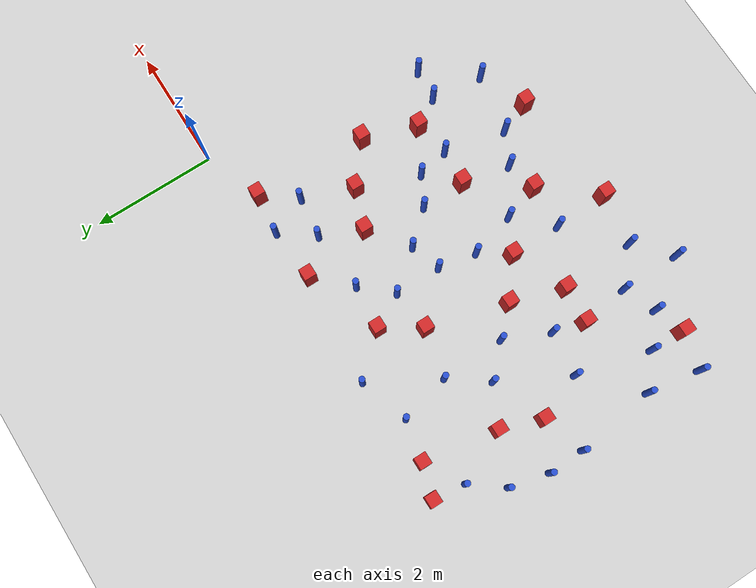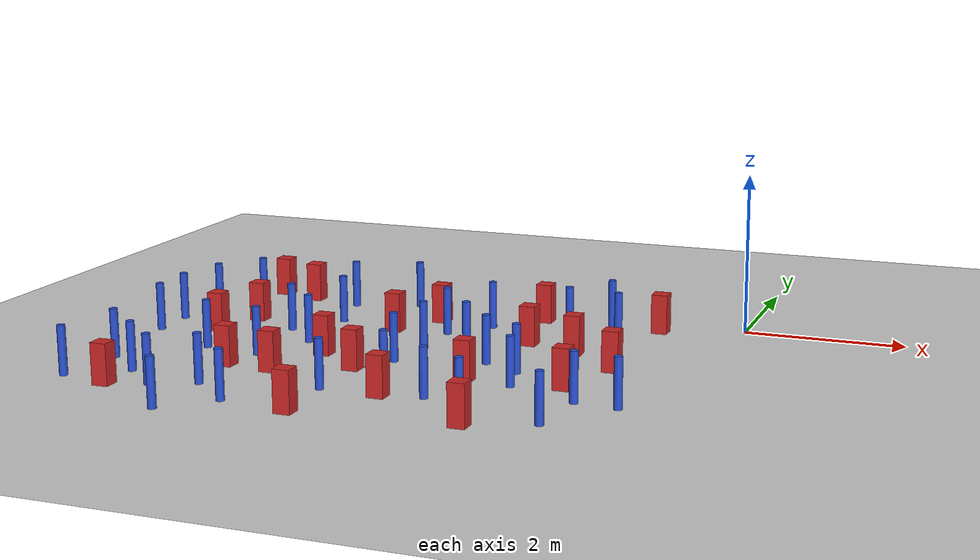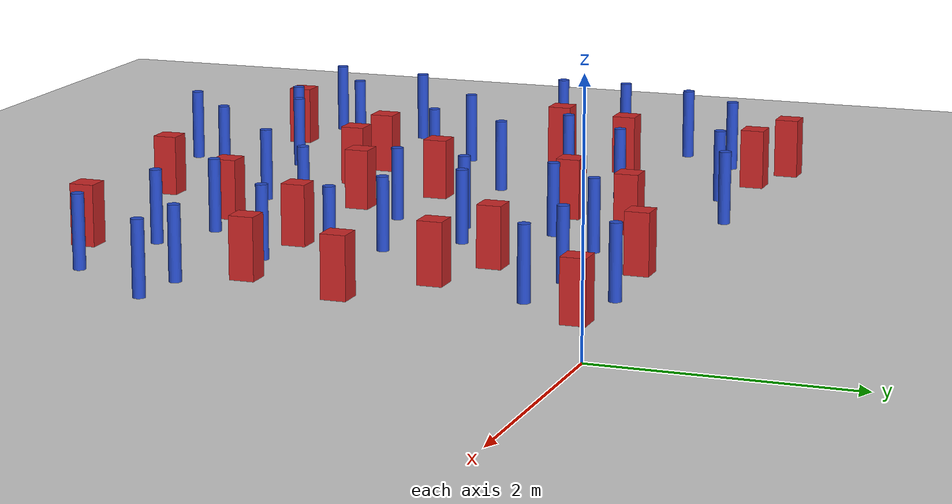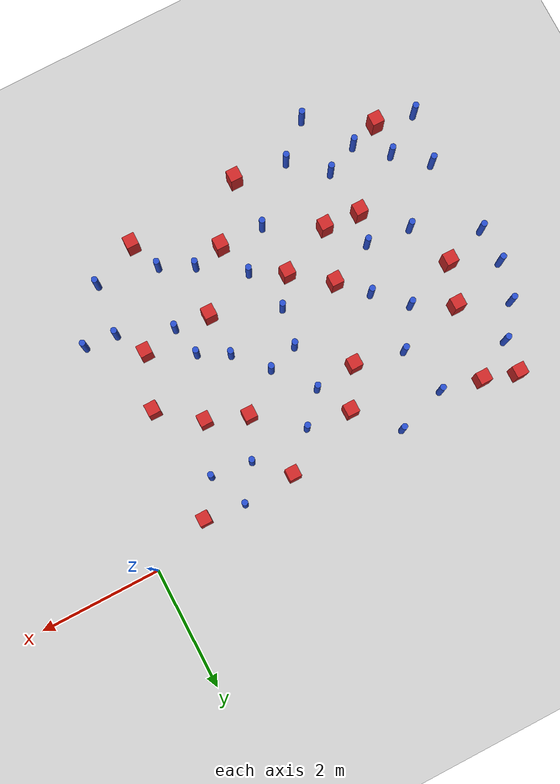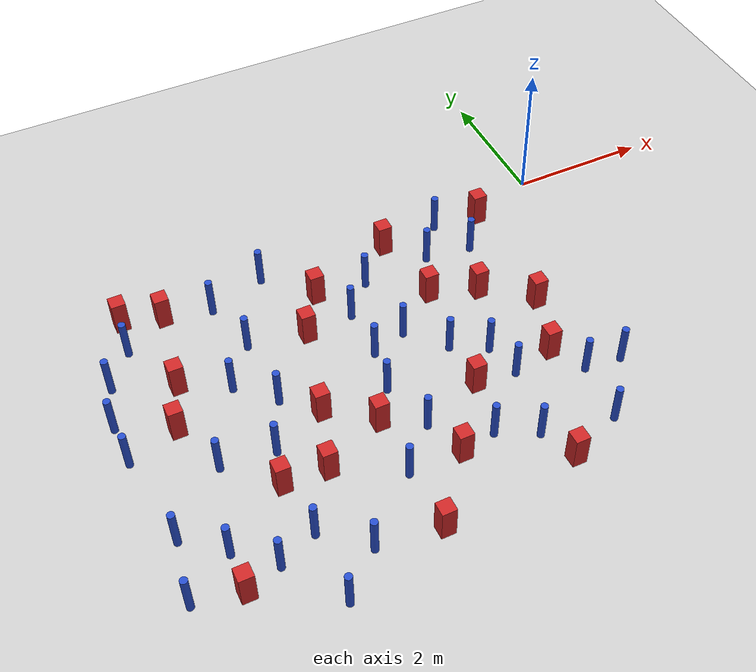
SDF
<sdf version="1.6">
 <world name="default">
  <model name="ground_plane">
   <static>1</static>
   <link name="link">
    <collision name="collision">
     <geometry><plane><normal>0 0 1</normal><size>100 100</size></plane></geometry>
     <surface><friction><ode><mu>100</mu><mu2>50</mu2></ode></friction></surface>
    </collision>
    <visual name="visual">
     <cast_shadows>0</cast_shadows>
     <geometry><plane><normal>0 0 1</normal><size>100 100</size></plane></geometry>
     <material>
      <ambient>1.0 1.0 1.0 1.0</ambient>
      <diffuse>0.8 0.8 0.8 1.0</diffuse>
      <specular>0.01 0.01 0.01 1.000000</specular>
     </material>
    </visual>
   </link>
  </model>
  <model name="pole_obstacle0">
   <static>true</static>
   <pose>-6.44890065304 -0.653169546035 7.38925637345e-09 -8.47170692799e-08 1.24976765038e-08 -1.74513093018e-07</pose>
   <link name="link">
    <pose>0 0 0.3 0 -0 0</pose>
    <inertial>
     <mass>1</mass>
     <inertia><ixx>0.145833</ixx><ixy>0</ixy><ixz>0</ixz><iyy>0.145833</iyy><iyz>0</iyz><izz>0.125</izz></inertia>
    </inertial>
    <collision name="collision">
     <geometry><cylinder><radius>0.05</radius><length>.6</length></cylinder></geometry>
    </collision>
    <visual name="visual">
     <geometry><cylinder><radius>0.05</radius><length>.6</length></cylinder></geometry>
     <material>
      <script><name>Gazebo/Blue</name><uri>file://media/materials/scripts/gazebo.material</uri></script>
     </material>
    </visual>
   </link>
  </model>
  <model name="square_post_obstacle9">
   <static>true</static>
   <pose>-0.999931024113 -0.356850673419 1.91545236811e-07 -7.35059704564e-06 1.12565212e-07 2.39332434364e-05</pose>
   <link name="link">
    <pose>0 0 0.25 0 -0 0</pose>
    <inertial>
     <mass>100</mass>
     <inertia>
      <ixx>0.166667</ixx>
      <ixy>0</ixy>
      <ixz>0</ixz>
      <iyy>0.166667</iyy>
      <iyz>0</iyz>
      <izz>0.166667</izz>
     </inertia>
    </inertial>
    <collision name="collision"><geometry><box><size>.2 .2 .5</size></box></geometry></collision>
    <visual name="visual">
     <geometry><box><size>.2 .2 .5</size></box></geometry>
     <material>
      <script><name>Gazebo/Red</name><uri>file://media/materials/scripts/gazebo.material</uri></script>
     </material>
    </visual>
   </link>
  </model>
  <model name="pole_obstacle8">
   <static>true</static>
   <pose>-0.579959619496 -3.61079927876 7.38925637345e-09 -8.47170692799e-08 1.2497676509e-08 -1.74513093016e-07</pose>
   <link name="link">
    <pose>0 0 0.3 0 -0 0</pose>
    <inertial>
     <mass>1</mass>
     <inertia><ixx>0.145833</ixx><ixy>0</ixy><ixz>0</ixz><iyy>0.145833</iyy><iyz>0</iyz><izz>0.125</izz></inertia>
    </inertial>
    <collision name="collision">
     <geometry><cylinder><radius>0.05</radius><length>.6</length></cylinder></geometry>
    </collision>
    <visual name="visual">
     <geometry><cylinder><radius>0.05</radius><length>.6</length></cylinder></geometry>
     <material>
      <script><name>Gazebo/Blue</name><uri>file://media/materials/scripts/gazebo.material</uri></script>
     </material>
    </visual>
   </link>
  </model>
  <model name="square_post_obstacle19">
   <static>true</static>
   <pose>-6.37829685578 -0.122280241923 1.91545236811e-07 -7.35059704564e-06 1.12565212e-07 2.39332434364e-05</pose>
   <link name="link">
    <pose>0 0 0.25 0 -0 0</pose>
    <inertial>
     <mass>100</mass>
     <inertia>
      <ixx>0.166667</ixx>
      <ixy>0</ixy>
      <ixz>0</ixz>
      <iyy>0.166667</iyy>
      <iyz>0</iyz>
      <izz>0.166667</izz>
     </inertia>
    </inertial>
    <collision name="collision"><geometry><box><size>.2 .2 .5</size></box></geometry></collision>
    <visual name="visual">
     <geometry><box><size>.2 .2 .5</size></box></geometry>
     <material>
      <script><name>Gazebo/Red</name><uri>file://media/materials/scripts/gazebo.material</uri></script>
     </material>
    </visual>
   </link>
  </model>
  <model name="pole_obstacle15">
   <static>true</static>
   <pose>-5.26758257116 -3.02592980464 7.38925637345e-09 -8.47170692798e-08 1.24976764937e-08 -1.74513093023e-07</pose>
   <link name="link">
    <pose>0 0 0.3 0 -0 0</pose>
    <inertial>
     <mass>1</mass>
     <inertia><ixx>0.145833</ixx><ixy>0</ixy><ixz>0</ixz><iyy>0.145833</iyy><iyz>0</iyz><izz>0.125</izz></inertia>
    </inertial>
    <collision name="collision">
     <geometry><cylinder><radius>0.05</radius><length>.6</length></cylinder></geometry>
    </collision>
    <visual name="visual">
     <geometry><cylinder><radius>0.05</radius><length>.6</length></cylinder></geometry>
     <material>
      <script><name>Gazebo/Blue</name><uri>file://media/materials/scripts/gazebo.material</uri></script>
     </material>
    </visual>
   </link>
  </model>
  <model name="pole_obstacle21">
   <static>true</static>
   <pose>-4.97401840618 -1.24345135781 7.38925637345e-09 -8.471706928e-08 1.24976765134e-08 -1.74513093015e-07</pose>
   <link name="link">
    <pose>0 0 0.3 0 -0 0</pose>
    <inertial>
     <mass>1</mass>
     <inertia><ixx>0.145833</ixx><ixy>0</ixy><ixz>0</ixz><iyy>0.145833</iyy><iyz>0</iyz><izz>0.125</izz></inertia>
    </inertial>
    <collision name="collision">
     <geometry><cylinder><radius>0.05</radius><length>.6</length></cylinder></geometry>
    </collision>
    <visual name="visual">
     <geometry><cylinder><radius>0.05</radius><length>.6</length></cylinder></geometry>
     <material>
      <script><name>Gazebo/Blue</name><uri>file://media/materials/scripts/gazebo.material</uri></script>
     </material>
    </visual>
   </link>
  </model>
  <model name="pole_obstacle22">
   <static>true</static>
   <pose>-1.3985543924 -0.890056622719 7.38925637345e-09 -8.47170692799e-08 1.24976765075e-08 -1.74513093017e-07</pose>
   <link name="link">
    <pose>0 0 0.3 0 -0 0</pose>
    <inertial>
     <mass>1</mass>
     <inertia><ixx>0.145833</ixx><ixy>0</ixy><ixz>0</ixz><iyy>0.145833</iyy><iyz>0</iyz><izz>0.125</izz></inertia>
    </inertial>
    <collision name="collision">
     <geometry><cylinder><radius>0.05</radius><length>.6</length></cylinder></geometry>
    </collision>
    <visual name="visual">
     <geometry><cylinder><radius>0.05</radius><length>.6</length></cylinder></geometry>
     <material>
      <script><name>Gazebo/Blue</name><uri>file://media/materials/scripts/gazebo.material</uri></script>
     </material>
    </visual>
   </link>
  </model>
  <model name="pole_obstacle25">
   <static>true</static>
   <pose>-5.30638908125 -4.32610743062 7.38925637345e-09 -8.47170692796e-08 1.24976764786e-08 -1.74513093032e-07</pose>
   <link name="link">
    <pose>0 0 0.3 0 -0 0</pose>
    <inertial>
     <mass>1</mass>
     <inertia><ixx>0.145833</ixx><ixy>0</ixy><ixz>0</ixz><iyy>0.145833</iyy><iyz>0</iyz><izz>0.125</izz></inertia>
    </inertial>
    <collision name="collision">
     <geometry><cylinder><radius>0.05</radius><length>.6</length></cylinder></geometry>
    </collision>
    <visual name="visual">
     <geometry><cylinder><radius>0.05</radius><length>.6</length></cylinder></geometry>
     <material>
      <script><name>Gazebo/Blue</name><uri>file://media/materials/scripts/gazebo.material</uri></script>
     </material>
    </visual>
   </link>
  </model>
  <model name="pole_obstacle29">
   <static>true</static>
   <pose>-1.66381092999 -0.271980726558 7.38925637345e-09 -8.47170692798e-08 1.24976764989e-08 -1.74513093022e-07</pose>
   <link name="link">
    <pose>0 0 0.3 0 -0 0</pose>
    <inertial>
     <mass>1</mass>
     <inertia><ixx>0.145833</ixx><ixy>0</ixy><ixz>0</ixz><iyy>0.145833</iyy><iyz>0</iyz><izz>0.125</izz></inertia>
    </inertial>
    <collision name="collision">
     <geometry><cylinder><radius>0.05</radius><length>.6</length></cylinder></geometry>
    </collision>
    <visual name="visual">
     <geometry><cylinder><radius>0.05</radius><length>.6</length></cylinder></geometry>
     <material>
      <script><name>Gazebo/Blue</name><uri>file://media/materials/scripts/gazebo.material</uri></script>
     </material>
    </visual>
   </link>
  </model>
  <model name="square_post_obstacle36">
   <static>true</static>
   <pose>-1.70796668874 -1.70919603212 1.91545236811e-07 -7.35059704564e-06 1.12565212e-07 2.39332434364e-05</pose>
   <link name="link">
    <pose>0 0 0.25 0 -0 0</pose>
    <inertial>
     <mass>100</mass>
     <inertia>
      <ixx>0.166667</ixx>
      <ixy>0</ixy>
      <ixz>0</ixz>
      <iyy>0.166667</iyy>
      <iyz>0</iyz>
      <izz>0.166667</izz>
     </inertia>
    </inertial>
    <collision name="collision"><geometry><box><size>.2 .2 .5</size></box></geometry></collision>
    <visual name="visual">
     <geometry><box><size>.2 .2 .5</size></box></geometry>
     <material>
      <script><name>Gazebo/Red</name><uri>file://media/materials/scripts/gazebo.material</uri></script>
     </material>
    </visual>
   </link>
  </model>
  <model name="pole_obstacle37">
   <static>true</static>
   <pose>-6.9874482904 -1.79786075742 7.38925637345e-09 -8.471706928e-08 1.24976765134e-08 -1.74513093015e-07</pose>
   <link name="link">
    <pose>0 0 0.3 0 -0 0</pose>
    <inertial>
     <mass>1</mass>
     <inertia><ixx>0.145833</ixx><ixy>0</ixy><ixz>0</ixz><iyy>0.145833</iyy><iyz>0</iyz><izz>0.125</izz></inertia>
    </inertial>
    <collision name="collision">
     <geometry><cylinder><radius>0.05</radius><length>.6</length></cylinder></geometry>
    </collision>
    <visual name="visual">
     <geometry><cylinder><radius>0.05</radius><length>.6</length></cylinder></geometry>
     <material>
      <script><name>Gazebo/Blue</name><uri>file://media/materials/scripts/gazebo.material</uri></script>
     </material>
    </visual>
   </link>
  </model>
  <model name="pole_obstacle43">
   <static>true</static>
   <pose>-2.69961856559 -3.96160292699 7.38925637345e-09 -8.47170692797e-08 1.24976764881e-08 -1.74513093029e-07</pose>
   <link name="link">
    <pose>0 0 0.3 0 -0 0</pose>
    <inertial>
     <mass>1</mass>
     <inertia><ixx>0.145833</ixx><ixy>0</ixy><ixz>0</ixz><iyy>0.145833</iyy><iyz>0</iyz><izz>0.125</izz></inertia>
    </inertial>
    <collision name="collision">
     <geometry><cylinder><radius>0.05</radius><length>.6</length></cylinder></geometry>
    </collision>
    <visual name="visual">
     <geometry><cylinder><radius>0.05</radius><length>.6</length></cylinder></geometry>
     <material>
      <script><name>Gazebo/Blue</name><uri>file://media/materials/scripts/gazebo.material</uri></script>
     </material>
    </visual>
   </link>
  </model>
  <model name="square_post_obstacle44">
   <static>true</static>
   <pose>-6.30785067879 -4.70396400309 1.91545236811e-07 -7.35059704564e-06 1.12565212e-07 2.39332434364e-05</pose>
   <link name="link">
    <pose>0 0 0.25 0 -0 0</pose>
    <inertial>
     <mass>100</mass>
     <inertia>
      <ixx>0.166667</ixx>
      <ixy>0</ixy>
      <ixz>0</ixz>
      <iyy>0.166667</iyy>
      <iyz>0</iyz>
      <izz>0.166667</izz>
     </inertia>
    </inertial>
    <collision name="collision"><geometry><box><size>.2 .2 .5</size></box></geometry></collision>
    <visual name="visual">
     <geometry><box><size>.2 .2 .5</size></box></geometry>
     <material>
      <script><name>Gazebo/Red</name><uri>file://media/materials/scripts/gazebo.material</uri></script>
     </material>
    </visual>
   </link>
  </model>
  <model name="pole_obstacle53">
   <static>true</static>
   <pose>-4.94392033794 -2.29521791671 7.38925637345e-09 -8.47170692798e-08 1.24976764937e-08 -1.74513093023e-07</pose>
   <link name="link">
    <pose>0 0 0.3 0 -0 0</pose>
    <inertial>
     <mass>1</mass>
     <inertia><ixx>0.145833</ixx><ixy>0</ixy><ixz>0</ixz><iyy>0.145833</iyy><iyz>0</iyz><izz>0.125</izz></inertia>
    </inertial>
    <collision name="collision">
     <geometry><cylinder><radius>0.05</radius><length>.6</length></cylinder></geometry>
    </collision>
    <visual name="visual">
     <geometry><cylinder><radius>0.05</radius><length>.6</length></cylinder></geometry>
     <material>
      <script><name>Gazebo/Blue</name><uri>file://media/materials/scripts/gazebo.material</uri></script>
     </material>
    </visual>
   </link>
  </model>
  <model name="square_post_obstacle61">
   <static>true</static>
   <pose>-2.53464199765 -3.16796348184 1.91545236811e-07 -7.35059704564e-06 1.12565212e-07 2.39332434364e-05</pose>
   <link name="link">
    <pose>0 0 0.25 0 -0 0</pose>
    <inertial>
     <mass>100</mass>
     <inertia>
      <ixx>0.166667</ixx>
      <ixy>0</ixy>
      <ixz>0</ixz>
      <iyy>0.166667</iyy>
      <iyz>0</iyz>
      <izz>0.166667</izz>
     </inertia>
    </inertial>
    <collision name="collision"><geometry><box><size>.2 .2 .5</size></box></geometry></collision>
    <visual name="visual">
     <geometry><box><size>.2 .2 .5</size></box></geometry>
     <material>
      <script><name>Gazebo/Red</name><uri>file://media/materials/scripts/gazebo.material</uri></script>
     </material>
    </visual>
   </link>
  </model>
  <model name="pole_obstacle58">
   <static>true</static>
   <pose>-2.54601403556 -2.44693160502 7.38925637345e-09 -8.47170692798e-08 1.24976764939e-08 -1.74513093025e-07</pose>
   <link name="link">
    <pose>0 0 0.3 0 -0 0</pose>
    <inertial>
     <mass>1</mass>
     <inertia><ixx>0.145833</ixx><ixy>0</ixy><ixz>0</ixz><iyy>0.145833</iyy><iyz>0</iyz><izz>0.125</izz></inertia>
    </inertial>
    <collision name="collision">
     <geometry><cylinder><radius>0.05</radius><length>.6</length></cylinder></geometry>
    </collision>
    <visual name="visual">
     <geometry><cylinder><radius>0.05</radius><length>.6</length></cylinder></geometry>
     <material>
      <script><name>Gazebo/Blue</name><uri>file://media/materials/scripts/gazebo.material</uri></script>
     </material>
    </visual>
   </link>
  </model>
  <model name="pole_obstacle62">
   <static>true</static>
   <pose>-2.17272506371 -4.22879847631 7.38925637345e-09 -8.47170692798e-08 1.24976765033e-08 -1.74513093019e-07</pose>
   <link name="link">
    <pose>0 0 0.3 0 -0 0</pose>
    <inertial>
     <mass>1</mass>
     <inertia><ixx>0.145833</ixx><ixy>0</ixy><ixz>0</ixz><iyy>0.145833</iyy><iyz>0</iyz><izz>0.125</izz></inertia>
    </inertial>
    <collision name="collision">
     <geometry><cylinder><radius>0.05</radius><length>.6</length></cylinder></geometry>
    </collision>
    <visual name="visual">
     <geometry><cylinder><radius>0.05</radius><length>.6</length></cylinder></geometry>
     <material>
      <script><name>Gazebo/Blue</name><uri>file://media/materials/scripts/gazebo.material</uri></script>
     </material>
    </visual>
   </link>
  </model>
  <model name="square_post_obstacle65">
   <static>true</static>
   <pose>-2.53181194584 -0.341317404575 1.91545236811e-07 -7.35059704564e-06 1.12565212e-07 2.39332434364e-05</pose>
   <link name="link">
    <pose>0 0 0.25 0 -0 0</pose>
    <inertial>
     <mass>100</mass>
     <inertia>
      <ixx>0.166667</ixx>
      <ixy>0</ixy>
      <ixz>0</ixz>
      <iyy>0.166667</iyy>
      <iyz>0</iyz>
      <izz>0.166667</izz>
     </inertia>
    </inertial>
    <collision name="collision"><geometry><box><size>.2 .2 .5</size></box></geometry></collision>
    <visual name="visual">
     <geometry><box><size>.2 .2 .5</size></box></geometry>
     <material>
      <script><name>Gazebo/Red</name><uri>file://media/materials/scripts/gazebo.material</uri></script>
     </material>
    </visual>
   </link>
  </model>
  <model name="pole_obstacle63">
   <static>true</static>
   <pose>-3.93078798397 -4.04599365922 7.38925637345e-09 -8.47170692793e-08 1.24976764468e-08 -1.74513093039e-07</pose>
   <link name="link">
    <pose>0 0 0.3 0 -0 0</pose>
    <inertial>
     <mass>1</mass>
     <inertia><ixx>0.145833</ixx><ixy>0</ixy><ixz>0</ixz><iyy>0.145833</iyy><iyz>0</iyz><izz>0.125</izz></inertia>
    </inertial>
    <collision name="collision">
     <geometry><cylinder><radius>0.05</radius><length>.6</length></cylinder></geometry>
    </collision>
    <visual name="visual">
     <geometry><cylinder><radius>0.05</radius><length>.6</length></cylinder></geometry>
     <material>
      <script><name>Gazebo/Blue</name><uri>file://media/materials/scripts/gazebo.material</uri></script>
     </material>
    </visual>
   </link>
  </model>
  <model name="square_post_obstacle71">
   <static>true</static>
   <pose>-3.89628903555 -4.92986998158 1.91545236811e-07 -7.35059704564e-06 1.12565212e-07 2.39332434364e-05</pose>
   <link name="link">
    <pose>0 0 0.25 0 -0 0</pose>
    <inertial>
     <mass>100</mass>
     <inertia>
      <ixx>0.166667</ixx>
      <ixy>0</ixy>
      <ixz>0</ixz>
      <iyy>0.166667</iyy>
      <iyz>0</iyz>
      <izz>0.166667</izz>
     </inertia>
    </inertial>
    <collision name="collision"><geometry><box><size>.2 .2 .5</size></box></geometry></collision>
    <visual name="visual">
     <geometry><box><size>.2 .2 .5</size></box></geometry>
     <material>
      <script><name>Gazebo/Red</name><uri>file://media/materials/scripts/gazebo.material</uri></script>
     </material>
    </visual>
   </link>
  </model>
  <model name="square_post_obstacle74">
   <static>true</static>
   <pose>-5.39716479266 -3.53612934481 1.91545236811e-07 -7.35059704564e-06 1.12565212e-07 2.39332434364e-05</pose>
   <link name="link">
    <pose>0 0 0.25 0 -0 0</pose>
    <inertial>
     <mass>100</mass>
     <inertia>
      <ixx>0.166667</ixx>
      <ixy>0</ixy>
      <ixz>0</ixz>
      <iyy>0.166667</iyy>
      <iyz>0</iyz>
      <izz>0.166667</izz>
     </inertia>
    </inertial>
    <collision name="collision"><geometry><box><size>.2 .2 .5</size></box></geometry></collision>
    <visual name="visual">
     <geometry><box><size>.2 .2 .5</size></box></geometry>
     <material>
      <script><name>Gazebo/Red</name><uri>file://media/materials/scripts/gazebo.material</uri></script>
     </material>
    </visual>
   </link>
  </model>
  <model name="square_post_obstacle75">
   <static>true</static>
   <pose>-4.80195045537 -3.57736668303 1.91545236811e-07 -7.35059704564e-06 1.12565212e-07 2.39332434364e-05</pose>
   <link name="link">
    <pose>0 0 0.25 0 -0 0</pose>
    <inertial>
     <mass>100</mass>
     <inertia>
      <ixx>0.166667</ixx>
      <ixy>0</ixy>
      <ixz>0</ixz>
      <iyy>0.166667</iyy>
      <iyz>0</iyz>
      <izz>0.166667</izz>
     </inertia>
    </inertial>
    <collision name="collision"><geometry><box><size>.2 .2 .5</size></box></geometry></collision>
    <visual name="visual">
     <geometry><box><size>.2 .2 .5</size></box></geometry>
     <material>
      <script><name>Gazebo/Red</name><uri>file://media/materials/scripts/gazebo.material</uri></script>
     </material>
    </visual>
   </link>
  </model>
  <model name="square_post_obstacle76">
   <static>true</static>
   <pose>-3.20277516988 -4.06565210096 1.91545236811e-07 -7.35059704564e-06 1.12565212e-07 2.39332434364e-05</pose>
   <link name="link">
    <pose>0 0 0.25 0 -0 0</pose>
    <inertial>
     <mass>100</mass>
     <inertia>
      <ixx>0.166667</ixx>
      <ixy>0</ixy>
      <ixz>0</ixz>
      <iyy>0.166667</iyy>
      <iyz>0</iyz>
      <izz>0.166667</izz>
     </inertia>
    </inertial>
    <collision name="collision"><geometry><box><size>.2 .2 .5</size></box></geometry></collision>
    <visual name="visual">
     <geometry><box><size>.2 .2 .5</size></box></geometry>
     <material>
      <script><name>Gazebo/Red</name><uri>file://media/materials/scripts/gazebo.material</uri></script>
     </material>
    </visual>
   </link>
  </model>
  <model name="square_post_obstacle78">
   <static>true</static>
   <pose>-4.52775414304 -2.71418074754 1.91545236811e-07 -7.35059704564e-06 1.12565212e-07 2.39332434364e-05</pose>
   <link name="link">
    <pose>0 0 0.25 0 -0 0</pose>
    <inertial>
     <mass>100</mass>
     <inertia>
      <ixx>0.166667</ixx>
      <ixy>0</ixy>
      <ixz>0</ixz>
      <iyy>0.166667</iyy>
      <iyz>0</iyz>
      <izz>0.166667</izz>
     </inertia>
    </inertial>
    <collision name="collision"><geometry><box><size>.2 .2 .5</size></box></geometry></collision>
    <visual name="visual">
     <geometry><box><size>.2 .2 .5</size></box></geometry>
     <material>
      <script><name>Gazebo/Red</name><uri>file://media/materials/scripts/gazebo.material</uri></script>
     </material>
    </visual>
   </link>
  </model>
  <model name="pole_obstacle85">
   <static>true</static>
   <pose>-3.48994823741 -2.10720939777 7.38925637345e-09 -8.47170692798e-08 1.24976764939e-08 -1.74513093025e-07</pose>
   <link name="link">
    <pose>0 0 0.3 0 -0 0</pose>
    <inertial>
     <mass>1</mass>
     <inertia><ixx>0.145833</ixx><ixy>0</ixy><ixz>0</ixz><iyy>0.145833</iyy><iyz>0</iyz><izz>0.125</izz></inertia>
    </inertial>
    <collision name="collision">
     <geometry><cylinder><radius>0.05</radius><length>.6</length></cylinder></geometry>
    </collision>
    <visual name="visual">
     <geometry><cylinder><radius>0.05</radius><length>.6</length></cylinder></geometry>
     <material>
      <script><name>Gazebo/Blue</name><uri>file://media/materials/scripts/gazebo.material</uri></script>
     </material>
    </visual>
   </link>
  </model>
  <model name="pole_obstacle88">
   <static>true</static>
   <pose>-1.19398360375 -4.41440438527 7.38925637345e-09 -8.47170692799e-08 1.24976765033e-08 -1.74513093018e-07</pose>
   <link name="link">
    <pose>0 0 0.3 0 -0 0</pose>
    <inertial>
     <mass>1</mass>
     <inertia><ixx>0.145833</ixx><ixy>0</ixy><ixz>0</ixz><iyy>0.145833</iyy><iyz>0</iyz><izz>0.125</izz></inertia>
    </inertial>
    <collision name="collision">
     <geometry><cylinder><radius>0.05</radius><length>.6</length></cylinder></geometry>
    </collision>
    <visual name="visual">
     <geometry><cylinder><radius>0.05</radius><length>.6</length></cylinder></geometry>
     <material>
      <script><name>Gazebo/Blue</name><uri>file://media/materials/scripts/gazebo.material</uri></script>
     </material>
    </visual>
   </link>
  </model>
  <model name="pole_obstacle95">
   <static>true</static>
   <pose>-5.40815309468 -1.83831663671 7.38925637345e-09 -8.471706928e-08 1.24976765134e-08 -1.74513093015e-07</pose>
   <link name="link">
    <pose>0 0 0.3 0 -0 0</pose>
    <inertial>
     <mass>1</mass>
     <inertia><ixx>0.145833</ixx><ixy>0</ixy><ixz>0</ixz><iyy>0.145833</iyy><iyz>0</iyz><izz>0.125</izz></inertia>
    </inertial>
    <collision name="collision">
     <geometry><cylinder><radius>0.05</radius><length>.6</length></cylinder></geometry>
    </collision>
    <visual name="visual">
     <geometry><cylinder><radius>0.05</radius><length>.6</length></cylinder></geometry>
     <material>
      <script><name>Gazebo/Blue</name><uri>file://media/materials/scripts/gazebo.material</uri></script>
     </material>
    </visual>
   </link>
  </model>
  <model name="square_post_obstacle84">
   <static>true</static>
   <pose>-1.07053029512 -2.22610137669 1.91545236811e-07 -7.35059704564e-06 1.12565212e-07 2.39332434364e-05</pose>
   <link name="link">
    <pose>0 0 0.25 0 -0 0</pose>
    <inertial>
     <mass>100</mass>
     <inertia>
      <ixx>0.166667</ixx>
      <ixy>0</ixy>
      <ixz>0</ixz>
      <iyy>0.166667</iyy>
      <iyz>0</iyz>
      <izz>0.166667</izz>
     </inertia>
    </inertial>
    <collision name="collision"><geometry><box><size>.2 .2 .5</size></box></geometry></collision>
    <visual name="visual">
     <geometry><box><size>.2 .2 .5</size></box></geometry>
     <material>
      <script><name>Gazebo/Red</name><uri>file://media/materials/scripts/gazebo.material</uri></script>
     </material>
    </visual>
   </link>
  </model>
  <model name="pole_obstacle99">
   <static>true</static>
   <pose>-5.17562037111 -0.426415294366 7.38925637345e-09 -8.47170692798e-08 1.24976765003e-08 -1.7451309302e-07</pose>
   <link name="link">
    <pose>0 0 0.3 0 -0 0</pose>
    <inertial>
     <mass>1</mass>
     <inertia><ixx>0.145833</ixx><ixy>0</ixy><ixz>0</ixz><iyy>0.145833</iyy><iyz>0</iyz><izz>0.125</izz></inertia>
    </inertial>
    <collision name="collision">
     <geometry><cylinder><radius>0.05</radius><length>.6</length></cylinder></geometry>
    </collision>
    <visual name="visual">
     <geometry><cylinder><radius>0.05</radius><length>.6</length></cylinder></geometry>
     <material>
      <script><name>Gazebo/Blue</name><uri>file://media/materials/scripts/gazebo.material</uri></script>
     </material>
    </visual>
   </link>
  </model>
  <model name="pole_obstacle104">
   <static>true</static>
   <pose>-3.48874369472 -1.34863549162 7.38925637345e-09 -8.47170692796e-08 1.24976764713e-08 -1.74513093037e-07</pose>
   <link name="link">
    <pose>0 0 0.3 0 -0 0</pose>
    <inertial>
     <mass>1</mass>
     <inertia><ixx>0.145833</ixx><ixy>0</ixy><ixz>0</ixz><iyy>0.145833</iyy><iyz>0</iyz><izz>0.125</izz></inertia>
    </inertial>
    <collision name="collision">
     <geometry><cylinder><radius>0.05</radius><length>.6</length></cylinder></geometry>
    </collision>
    <visual name="visual">
     <geometry><cylinder><radius>0.05</radius><length>.6</length></cylinder></geometry>
     <material>
      <script><name>Gazebo/Blue</name><uri>file://media/materials/scripts/gazebo.material</uri></script>
     </material>
    </visual>
   </link>
  </model>
  <model name="square_post_obstacle92">
   <static>true</static>
   <pose>-5.83354974262 -0.290758281822 1.91545236811e-07 -7.35059704564e-06 1.12565212e-07 2.39332434364e-05</pose>
   <link name="link">
    <pose>0 0 0.25 0 -0 0</pose>
    <inertial>
     <mass>100</mass>
     <inertia>
      <ixx>0.166667</ixx>
      <ixy>0</ixy>
      <ixz>0</ixz>
      <iyy>0.166667</iyy>
      <iyz>0</iyz>
      <izz>0.166667</izz>
     </inertia>
    </inertial>
    <collision name="collision"><geometry><box><size>.2 .2 .5</size></box></geometry></collision>
    <visual name="visual">
     <geometry><box><size>.2 .2 .5</size></box></geometry>
     <material>
      <script><name>Gazebo/Red</name><uri>file://media/materials/scripts/gazebo.material</uri></script>
     </material>
    </visual>
   </link>
  </model>
  <model name="square_post_obstacle95">
   <static>true</static>
   <pose>-1.37657577522 -3.09801633419 1.91545236811e-07 -7.35059704564e-06 1.12565212e-07 2.39332434364e-05</pose>
   <link name="link">
    <pose>0 0 0.25 0 -0 0</pose>
    <inertial>
     <mass>100</mass>
     <inertia>
      <ixx>0.166667</ixx>
      <ixy>0</ixy>
      <ixz>0</ixz>
      <iyy>0.166667</iyy>
      <iyz>0</iyz>
      <izz>0.166667</izz>
     </inertia>
    </inertial>
    <collision name="collision"><geometry><box><size>.2 .2 .5</size></box></geometry></collision>
    <visual name="visual">
     <geometry><box><size>.2 .2 .5</size></box></geometry>
     <material>
      <script><name>Gazebo/Red</name><uri>file://media/materials/scripts/gazebo.material</uri></script>
     </material>
    </visual>
   </link>
  </model>
  <model name="square_post_obstacle96">
   <static>true</static>
   <pose>-6.04250001563 -1.50556401064 1.91545236811e-07 -7.35059704564e-06 1.12565212e-07 2.39332434364e-05</pose>
   <link name="link">
    <pose>0 0 0.25 0 -0 0</pose>
    <inertial>
     <mass>100</mass>
     <inertia>
      <ixx>0.166667</ixx>
      <ixy>0</ixy>
      <ixz>0</ixz>
      <iyy>0.166667</iyy>
      <iyz>0</iyz>
      <izz>0.166667</izz>
     </inertia>
    </inertial>
    <collision name="collision"><geometry><box><size>.2 .2 .5</size></box></geometry></collision>
    <visual name="visual">
     <geometry><box><size>.2 .2 .5</size></box></geometry>
     <material>
      <script><name>Gazebo/Red</name><uri>file://media/materials/scripts/gazebo.material</uri></script>
     </material>
    </visual>
   </link>
  </model>
  <model name="pole_obstacle110">
   <static>true</static>
   <pose>-3.06008715887 -0.875139895147 7.38925637345e-09 -8.471706928e-08 1.24976765177e-08 -1.74513093012e-07</pose>
   <link name="link">
    <pose>0 0 0.3 0 -0 0</pose>
    <inertial>
     <mass>1</mass>
     <inertia><ixx>0.145833</ixx><ixy>0</ixy><ixz>0</ixz><iyy>0.145833</iyy><iyz>0</iyz><izz>0.125</izz></inertia>
    </inertial>
    <collision name="collision">
     <geometry><cylinder><radius>0.05</radius><length>.6</length></cylinder></geometry>
    </collision>
    <visual name="visual">
     <geometry><cylinder><radius>0.05</radius><length>.6</length></cylinder></geometry>
     <material>
      <script><name>Gazebo/Blue</name><uri>file://media/materials/scripts/gazebo.material</uri></script>
     </material>
    </visual>
   </link>
  </model>
  <model name="square_post_obstacle101">
   <static>true</static>
   <pose>-3.78473200888 -0.804358699459 1.91545236811e-07 -7.35059704564e-06 1.12565212e-07 2.39332434364e-05</pose>
   <link name="link">
    <pose>0 0 0.25 0 -0 0</pose>
    <inertial>
     <mass>100</mass>
     <inertia>
      <ixx>0.166667</ixx>
      <ixy>0</ixy>
      <ixz>0</ixz>
      <iyy>0.166667</iyy>
      <iyz>0</iyz>
      <izz>0.166667</izz>
     </inertia>
    </inertial>
    <collision name="collision"><geometry><box><size>.2 .2 .5</size></box></geometry></collision>
    <visual name="visual">
     <geometry><box><size>.2 .2 .5</size></box></geometry>
     <material>
      <script><name>Gazebo/Red</name><uri>file://media/materials/scripts/gazebo.material</uri></script>
     </material>
    </visual>
   </link>
  </model>
  <model name="pole_obstacle117">
   <static>true</static>
   <pose>-4.36265414452 -0.167091943209 7.38925637345e-09 -8.471706928e-08 1.24976765188e-08 -1.74513093011e-07</pose>
   <link name="link">
    <pose>0 0 0.3 0 -0 0</pose>
    <inertial>
     <mass>1</mass>
     <inertia><ixx>0.145833</ixx><ixy>0</ixy><ixz>0</ixz><iyy>0.145833</iyy><iyz>0</iyz><izz>0.125</izz></inertia>
    </inertial>
    <collision name="collision">
     <geometry><cylinder><radius>0.05</radius><length>.6</length></cylinder></geometry>
    </collision>
    <visual name="visual">
     <geometry><cylinder><radius>0.05</radius><length>.6</length></cylinder></geometry>
     <material>
      <script><name>Gazebo/Blue</name><uri>file://media/materials/scripts/gazebo.material</uri></script>
     </material>
    </visual>
   </link>
  </model>
  <model name="square_post_obstacle103">
   <static>true</static>
   <pose>-6.27248084971 -2.17571762801 1.91545236811e-07 -7.35059704564e-06 1.12565212e-07 2.39332434364e-05</pose>
   <link name="link">
    <pose>0 0 0.25 0 -0 0</pose>
    <inertial>
     <mass>100</mass>
     <inertia>
      <ixx>0.166667</ixx>
      <ixy>0</ixy>
      <ixz>0</ixz>
      <iyy>0.166667</iyy>
      <iyz>0</iyz>
      <izz>0.166667</izz>
     </inertia>
    </inertial>
    <collision name="collision"><geometry><box><size>.2 .2 .5</size></box></geometry></collision>
    <visual name="visual">
     <geometry><box><size>.2 .2 .5</size></box></geometry>
     <material>
      <script><name>Gazebo/Red</name><uri>file://media/materials/scripts/gazebo.material</uri></script>
     </material>
    </visual>
   </link>
  </model>
  <model name="pole_obstacle119">
   <static>true</static>
   <pose>-2.07514869893 -2.70616462183 7.38925637345e-09 -8.47170692798e-08 1.24976764939e-08 -1.74513093025e-07</pose>
   <link name="link">
    <pose>0 0 0.3 0 -0 0</pose>
    <inertial>
     <mass>1</mass>
     <inertia><ixx>0.145833</ixx><ixy>0</ixy><ixz>0</ixz><iyy>0.145833</iyy><iyz>0</iyz><izz>0.125</izz></inertia>
    </inertial>
    <collision name="collision">
     <geometry><cylinder><radius>0.05</radius><length>.6</length></cylinder></geometry>
    </collision>
    <visual name="visual">
     <geometry><cylinder><radius>0.05</radius><length>.6</length></cylinder></geometry>
     <material>
      <script><name>Gazebo/Blue</name><uri>file://media/materials/scripts/gazebo.material</uri></script>
     </material>
    </visual>
   </link>
  </model>
  <model name="pole_obstacle126">
   <static>true</static>
   <pose>-5.83055767246 -4.55089955128 7.38925637345e-09 -8.47170692796e-08 1.24976764786e-08 -1.74513093032e-07</pose>
   <link name="link">
    <pose>0 0 0.3 0 -0 0</pose>
    <inertial>
     <mass>1</mass>
     <inertia><ixx>0.145833</ixx><ixy>0</ixy><ixz>0</ixz><iyy>0.145833</iyy><iyz>0</iyz><izz>0.125</izz></inertia>
    </inertial>
    <collision name="collision">
     <geometry><cylinder><radius>0.05</radius><length>.6</length></cylinder></geometry>
    </collision>
    <visual name="visual">
     <geometry><cylinder><radius>0.05</radius><length>.6</length></cylinder></geometry>
     <material>
      <script><name>Gazebo/Blue</name><uri>file://media/materials/scripts/gazebo.material</uri></script>
     </material>
    </visual>
   </link>
  </model>
  <model name="pole_obstacle129">
   <static>true</static>
   <pose>-5.30523384693 -5.31636182736 7.38925637345e-09 -8.47170692796e-08 1.24976764786e-08 -1.74513093032e-07</pose>
   <link name="link">
    <pose>0 0 0.3 0 -0 0</pose>
    <inertial>
     <mass>1</mass>
     <inertia><ixx>0.145833</ixx><ixy>0</ixy><ixz>0</ixz><iyy>0.145833</iyy><iyz>0</iyz><izz>0.125</izz></inertia>
    </inertial>
    <collision name="collision">
     <geometry><cylinder><radius>0.05</radius><length>.6</length></cylinder></geometry>
    </collision>
    <visual name="visual">
     <geometry><cylinder><radius>0.05</radius><length>.6</length></cylinder></geometry>
     <material>
      <script><name>Gazebo/Blue</name><uri>file://media/materials/scripts/gazebo.material</uri></script>
     </material>
    </visual>
   </link>
  </model>
  <model name="square_post_obstacle132">
   <static>true</static>
   <pose>-4.17123638332 -1.41859118331 1.91545236811e-07 -7.35059704564e-06 1.12565212e-07 2.39332434364e-05</pose>
   <link name="link">
    <pose>0 0 0.25 0 -0 0</pose>
    <inertial>
     <mass>100</mass>
     <inertia>
      <ixx>0.166667</ixx>
      <ixy>0</ixy>
      <ixz>0</ixz>
      <iyy>0.166667</iyy>
      <iyz>0</iyz>
      <izz>0.166667</izz>
     </inertia>
    </inertial>
    <collision name="collision"><geometry><box><size>.2 .2 .5</size></box></geometry></collision>
    <visual name="visual">
     <geometry><box><size>.2 .2 .5</size></box></geometry>
     <material>
      <script><name>Gazebo/Red</name><uri>file://media/materials/scripts/gazebo.material</uri></script>
     </material>
    </visual>
   </link>
  </model>
  <model name="pole_obstacle143">
   <static>true</static>
   <pose>-6.80074126377 -3.71027292523 7.38925637345e-09 -8.47170692798e-08 1.24976764937e-08 -1.74513093023e-07</pose>
   <link name="link">
    <pose>0 0 0.3 0 -0 0</pose>
    <inertial>
     <mass>1</mass>
     <inertia><ixx>0.145833</ixx><ixy>0</ixy><ixz>0</ixz><iyy>0.145833</iyy><iyz>0</iyz><izz>0.125</izz></inertia>
    </inertial>
    <collision name="collision">
     <geometry><cylinder><radius>0.05</radius><length>.6</length></cylinder></geometry>
    </collision>
    <visual name="visual">
     <geometry><cylinder><radius>0.05</radius><length>.6</length></cylinder></geometry>
     <material>
      <script><name>Gazebo/Blue</name><uri>file://media/materials/scripts/gazebo.material</uri></script>
     </material>
    </visual>
   </link>
  </model>
  <model name="pole_obstacle145">
   <static>true</static>
   <pose>-2.06072737014 -0.805665972911 7.38925637345e-09 -8.471706928e-08 1.24976765177e-08 -1.74513093012e-07</pose>
   <link name="link">
    <pose>0 0 0.3 0 -0 0</pose>
    <inertial>
     <mass>1</mass>
     <inertia><ixx>0.145833</ixx><ixy>0</ixy><ixz>0</ixz><iyy>0.145833</iyy><iyz>0</iyz><izz>0.125</izz></inertia>
    </inertial>
    <collision name="collision">
     <geometry><cylinder><radius>0.05</radius><length>.6</length></cylinder></geometry>
    </collision>
    <visual name="visual">
     <geometry><cylinder><radius>0.05</radius><length>.6</length></cylinder></geometry>
     <material>
      <script><name>Gazebo/Blue</name><uri>file://media/materials/scripts/gazebo.material</uri></script>
     </material>
    </visual>
   </link>
  </model>
  <model name="square_post_obstacle138">
   <static>true</static>
   <pose>-3.9284028748 -3.18845647996 1.91545236811e-07 -7.35059704564e-06 1.12565212e-07 2.39332434364e-05</pose>
   <link name="link">
    <pose>0 0 0.25 0 -0 0</pose>
    <inertial>
     <mass>100</mass>
     <inertia>
      <ixx>0.166667</ixx>
      <ixy>0</ixy>
      <ixz>0</ixz>
      <iyy>0.166667</iyy>
      <iyz>0</iyz>
      <izz>0.166667</izz>
     </inertia>
    </inertial>
    <collision name="collision"><geometry><box><size>.2 .2 .5</size></box></geometry></collision>
    <visual name="visual">
     <geometry><box><size>.2 .2 .5</size></box></geometry>
     <material>
      <script><name>Gazebo/Red</name><uri>file://media/materials/scripts/gazebo.material</uri></script>
     </material>
    </visual>
   </link>
  </model>
  <model name="pole_obstacle156">
   <static>true</static>
   <pose>-6.94132858918 -4.57021154728 7.38925637345e-09 -8.47170692796e-08 1.24976764786e-08 -1.74513093032e-07</pose>
   <link name="link">
    <pose>0 0 0.3 0 -0 0</pose>
    <inertial>
     <mass>1</mass>
     <inertia><ixx>0.145833</ixx><ixy>0</ixy><ixz>0</ixz><iyy>0.145833</iyy><iyz>0</iyz><izz>0.125</izz></inertia>
    </inertial>
    <collision name="collision">
     <geometry><cylinder><radius>0.05</radius><length>.6</length></cylinder></geometry>
    </collision>
    <visual name="visual">
     <geometry><cylinder><radius>0.05</radius><length>.6</length></cylinder></geometry>
     <material>
      <script><name>Gazebo/Blue</name><uri>file://media/materials/scripts/gazebo.material</uri></script>
     </material>
    </visual>
   </link>
  </model>
  <model name="square_post_obstacle153">
   <static>true</static>
   <pose>-2.35833910017 -1.46713130559 1.91545236811e-07 -7.35059704564e-06 1.12565212e-07 2.39332434364e-05</pose>
   <link name="link">
    <pose>0 0 0.25 0 -0 0</pose>
    <inertial>
     <mass>100</mass>
     <inertia>
      <ixx>0.166667</ixx>
      <ixy>0</ixy>
      <ixz>0</ixz>
      <iyy>0.166667</iyy>
      <iyz>0</iyz>
      <izz>0.166667</izz>
     </inertia>
    </inertial>
    <collision name="collision"><geometry><box><size>.2 .2 .5</size></box></geometry></collision>
    <visual name="visual">
     <geometry><box><size>.2 .2 .5</size></box></geometry>
     <material>
      <script><name>Gazebo/Red</name><uri>file://media/materials/scripts/gazebo.material</uri></script>
     </material>
    </visual>
   </link>
  </model>
  <model name="pole_obstacle164">
   <static>true</static>
   <pose>-1.96055973127 -3.22231791581 7.38925637345e-09 -8.471706928e-08 1.24976765192e-08 -1.7451309301e-07</pose>
   <link name="link">
    <pose>0 0 0.3 0 -0 0</pose>
    <inertial>
     <mass>1</mass>
     <inertia><ixx>0.145833</ixx><ixy>0</ixy><ixz>0</ixz><iyy>0.145833</iyy><iyz>0</iyz><izz>0.125</izz></inertia>
    </inertial>
    <collision name="collision">
     <geometry><cylinder><radius>0.05</radius><length>.6</length></cylinder></geometry>
    </collision>
    <visual name="visual">
     <geometry><cylinder><radius>0.05</radius><length>.6</length></cylinder></geometry>
     <material>
      <script><name>Gazebo/Blue</name><uri>file://media/materials/scripts/gazebo.material</uri></script>
     </material>
    </visual>
   </link>
  </model>
  <model name="pole_obstacle170">
   <static>true</static>
   <pose>-6.97499101507 -2.39284038023 7.38925637345e-09 -8.47170692798e-08 1.24976764937e-08 -1.74513093023e-07</pose>
   <link name="link">
    <pose>0 0 0.3 0 -0 0</pose>
    <inertial>
     <mass>1</mass>
     <inertia><ixx>0.145833</ixx><ixy>0</ixy><ixz>0</ixz><iyy>0.145833</iyy><iyz>0</iyz><izz>0.125</izz></inertia>
    </inertial>
    <collision name="collision">
     <geometry><cylinder><radius>0.05</radius><length>.6</length></cylinder></geometry>
    </collision>
    <visual name="visual">
     <geometry><cylinder><radius>0.05</radius><length>.6</length></cylinder></geometry>
     <material>
      <script><name>Gazebo/Blue</name><uri>file://media/materials/scripts/gazebo.material</uri></script>
     </material>
    </visual>
   </link>
  </model>
  <model name="pole_obstacle183">
   <static>true</static>
   <pose>-2.99462139799 -1.94915825409 7.38925637345e-09 -8.471706928e-08 1.24976765152e-08 -1.74513093012e-07</pose>
   <link name="link">
    <pose>0 0 0.3 0 -0 0</pose>
    <inertial>
     <mass>1</mass>
     <inertia><ixx>0.145833</ixx><ixy>0</ixy><ixz>0</ixz><iyy>0.145833</iyy><iyz>0</iyz><izz>0.125</izz></inertia>
    </inertial>
    <collision name="collision">
     <geometry><cylinder><radius>0.05</radius><length>.6</length></cylinder></geometry>
    </collision>
    <visual name="visual">
     <geometry><cylinder><radius>0.05</radius><length>.6</length></cylinder></geometry>
     <material>
      <script><name>Gazebo/Blue</name><uri>file://media/materials/scripts/gazebo.material</uri></script>
     </material>
    </visual>
   </link>
  </model>
  <model name="pole_obstacle185">
   <static>true</static>
   <pose>-6.29981518153 -4.13858515232 7.38925637345e-09 -8.47170692796e-08 1.24976764786e-08 -1.74513093032e-07</pose>
   <link name="link">
    <pose>0 0 0.3 0 -0 0</pose>
    <inertial>
     <mass>1</mass>
     <inertia><ixx>0.145833</ixx><ixy>0</ixy><ixz>0</ixz><iyy>0.145833</iyy><iyz>0</iyz><izz>0.125</izz></inertia>
    </inertial>
    <collision name="collision">
     <geometry><cylinder><radius>0.05</radius><length>.6</length></cylinder></geometry>
    </collision>
    <visual name="visual">
     <geometry><cylinder><radius>0.05</radius><length>.6</length></cylinder></geometry>
     <material>
      <script><name>Gazebo/Blue</name><uri>file://media/materials/scripts/gazebo.material</uri></script>
     </material>
    </visual>
   </link>
  </model>
  <model name="pole_obstacle192">
   <static>true</static>
   <pose>-4.75863494203 -4.81028999994 7.38925637345e-09 -8.47170692796e-08 1.24976764786e-08 -1.74513093032e-07</pose>
   <link name="link">
    <pose>0 0 0.3 0 -0 0</pose>
    <inertial>
     <mass>1</mass>
     <inertia><ixx>0.145833</ixx><ixy>0</ixy><ixz>0</ixz><iyy>0.145833</iyy><iyz>0</iyz><izz>0.125</izz></inertia>
    </inertial>
    <collision name="collision">
     <geometry><cylinder><radius>0.05</radius><length>.6</length></cylinder></geometry>
    </collision>
    <visual name="visual">
     <geometry><cylinder><radius>0.05</radius><length>.6</length></cylinder></geometry>
     <material>
      <script><name>Gazebo/Blue</name><uri>file://media/materials/scripts/gazebo.material</uri></script>
     </material>
    </visual>
   </link>
  </model>
  <model name="pole_obstacle195">
   <static>true</static>
   <pose>-3.39687759139 -3.48112790568 7.38925637345e-09 -8.47170692798e-08 1.24976764939e-08 -1.74513093025e-07</pose>
   <link name="link">
    <pose>0 0 0.3 0 -0 0</pose>
    <inertial>
     <mass>1</mass>
     <inertia><ixx>0.145833</ixx><ixy>0</ixy><ixz>0</ixz><iyy>0.145833</iyy><iyz>0</iyz><izz>0.125</izz></inertia>
    </inertial>
    <collision name="collision">
     <geometry><cylinder><radius>0.05</radius><length>.6</length></cylinder></geometry>
    </collision>
    <visual name="visual">
     <geometry><cylinder><radius>0.05</radius><length>.6</length></cylinder></geometry>
     <material>
      <script><name>Gazebo/Blue</name><uri>file://media/materials/scripts/gazebo.material</uri></script>
     </material>
    </visual>
   </link>
  </model>
  <model name="square_post_obstacle193">
   <static>true</static>
   <pose>-1.96830794873 -4.73338551516 1.91545236811e-07 -7.35059704564e-06 1.12565212e-07 2.39332434364e-05</pose>
   <link name="link">
    <pose>0 0 0.25 0 -0 0</pose>
    <inertial>
     <mass>100</mass>
     <inertia>
      <ixx>0.166667</ixx>
      <ixy>0</ixy>
      <ixz>0</ixz>
      <iyy>0.166667</iyy>
      <iyz>0</iyz>
      <izz>0.166667</izz>
     </inertia>
    </inertial>
    <collision name="collision"><geometry><box><size>.2 .2 .5</size></box></geometry></collision>
    <visual name="visual">
     <geometry><box><size>.2 .2 .5</size></box></geometry>
     <material>
      <script><name>Gazebo/Red</name><uri>file://media/materials/scripts/gazebo.material</uri></script>
     </material>
    </visual>
   </link>
  </model>
  <model name="pole_obstacle201">
   <static>true</static>
   <pose>-5.99341663707 -2.94202532903 7.38925637345e-09 -8.47170692798e-08 1.24976764937e-08 -1.74513093023e-07</pose>
   <link name="link">
    <pose>0 0 0.3 0 -0 0</pose>
    <inertial>
     <mass>1</mass>
     <inertia><ixx>0.145833</ixx><ixy>0</ixy><ixz>0</ixz><iyy>0.145833</iyy><iyz>0</iyz><izz>0.125</izz></inertia>
    </inertial>
    <collision name="collision">
     <geometry><cylinder><radius>0.05</radius><length>.6</length></cylinder></geometry>
    </collision>
    <visual name="visual">
     <geometry><cylinder><radius>0.05</radius><length>.6</length></cylinder></geometry>
     <material>
      <script><name>Gazebo/Blue</name><uri>file://media/materials/scripts/gazebo.material</uri></script>
     </material>
    </visual>
   </link>
  </model>
  <model name="pole_obstacle213">
   <static>true</static>
   <pose>-3.60516592511 -2.73234014888 7.38925637345e-09 -8.471706928e-08 1.24976765098e-08 -1.74513093016e-07</pose>
   <link name="link">
    <pose>0 0 0.3 0 -0 0</pose>
    <inertial>
     <mass>1</mass>
     <inertia><ixx>0.145833</ixx><ixy>0</ixy><ixz>0</ixz><iyy>0.145833</iyy><iyz>0</iyz><izz>0.125</izz></inertia>
    </inertial>
    <collision name="collision">
     <geometry><cylinder><radius>0.05</radius><length>.6</length></cylinder></geometry>
    </collision>
    <visual name="visual">
     <geometry><cylinder><radius>0.05</radius><length>.6</length></cylinder></geometry>
     <material>
      <script><name>Gazebo/Blue</name><uri>file://media/materials/scripts/gazebo.material</uri></script>
     </material>
    </visual>
   </link>
  </model>
  <model name="pole_obstacle216">
   <static>true</static>
   <pose>-6.83448979756 -1.16081026558 7.38925637345e-09 -8.471706928e-08 1.24976765134e-08 -1.74513093015e-07</pose>
   <link name="link">
    <pose>0 0 0.3 0 -0 0</pose>
    <inertial>
     <mass>1</mass>
     <inertia><ixx>0.145833</ixx><ixy>0</ixy><ixz>0</ixz><iyy>0.145833</iyy><iyz>0</iyz><izz>0.125</izz></inertia>
    </inertial>
    <collision name="collision">
     <geometry><cylinder><radius>0.05</radius><length>.6</length></cylinder></geometry>
    </collision>
    <visual name="visual">
     <geometry><cylinder><radius>0.05</radius><length>.6</length></cylinder></geometry>
     <material>
      <script><name>Gazebo/Blue</name><uri>file://media/materials/scripts/gazebo.material</uri></script>
     </material>
    </visual>
   </link>
  </model>
  <model name="pole_obstacle234">
   <static>true</static>
   <pose>-1.09739999043 -3.56104997922 7.38925637345e-09 -8.47170692799e-08 1.24976765053e-08 -1.74513093017e-07</pose>
   <link name="link">
    <pose>0 0 0.3 0 -0 0</pose>
    <inertial>
     <mass>1</mass>
     <inertia><ixx>0.145833</ixx><ixy>0</ixy><ixz>0</ixz><iyy>0.145833</iyy><iyz>0</iyz><izz>0.125</izz></inertia>
    </inertial>
    <collision name="collision">
     <geometry><cylinder><radius>0.05</radius><length>.6</length></cylinder></geometry>
    </collision>
    <visual name="visual">
     <geometry><cylinder><radius>0.05</radius><length>.6</length></cylinder></geometry>
     <material>
      <script><name>Gazebo/Blue</name><uri>file://media/materials/scripts/gazebo.material</uri></script>
     </material>
    </visual>
   </link>
  </model>
 </world>
</sdf>
